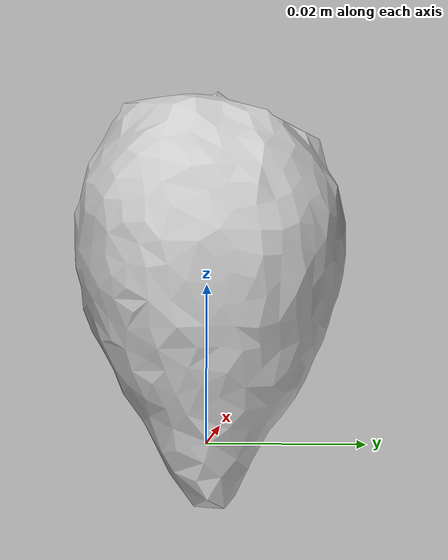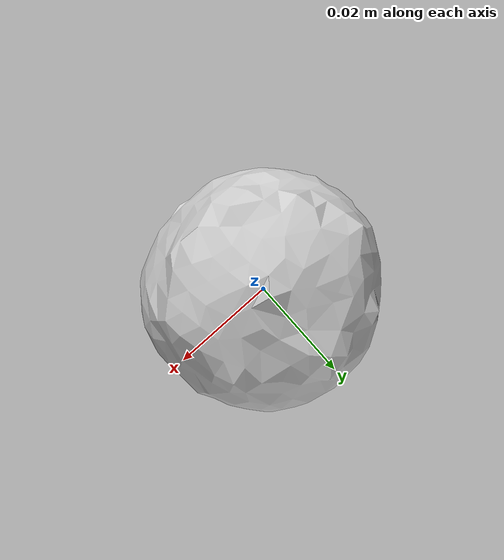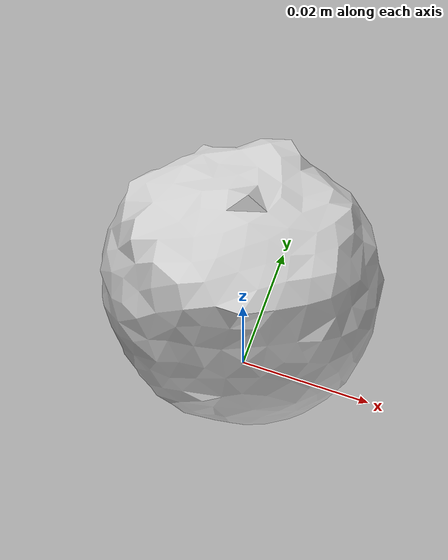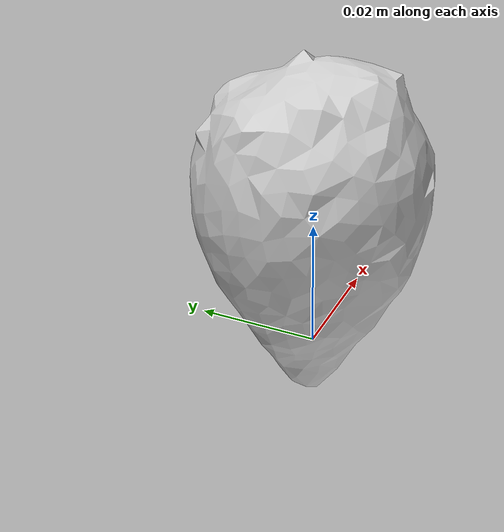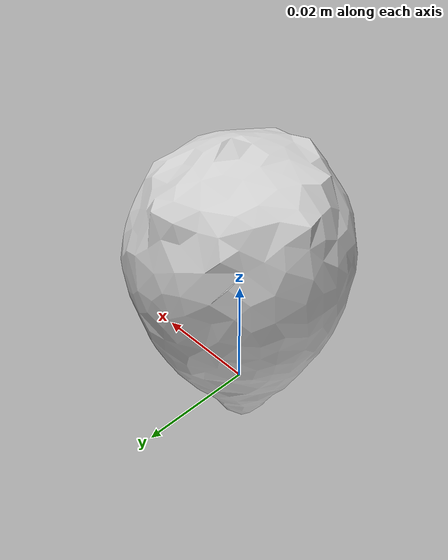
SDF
<?xml version='1.0'?>
<sdf version="1.5">
  <model name="strawberry_03">
    <pose>0 0 0.02 3.14 0 0</pose>
    <static>false</static>
    <link name="link">
      <inertial>
        <mass>0.01</mass>
        <inertia>
          <ixx>0.000001397</ixx>
          <iyy>0.000001397</iyy>
          <izz>0.000000919</izz>
        </inertia>
      </inertial>
      <collision name="collision">
        <geometry>
          <mesh>
            <uri>model://strawberry_03/collision/03.dae</uri>
          </mesh>
        </geometry>
      </collision>
      <visual name="visual">
        <geometry>
          <mesh>
            <uri>model://strawberry_03/visual/03.dae</uri>
          </mesh>
        </geometry>
        <material>
          <script>
            <uri>model://strawberry_03/materials/scripts</uri>
            <uri>model://strawberry_03/materials/textures</uri>
            <name>strawberry_03</name>
          </script>
        </material>
      </visual>
    </link>
  </model>
</sdf>
